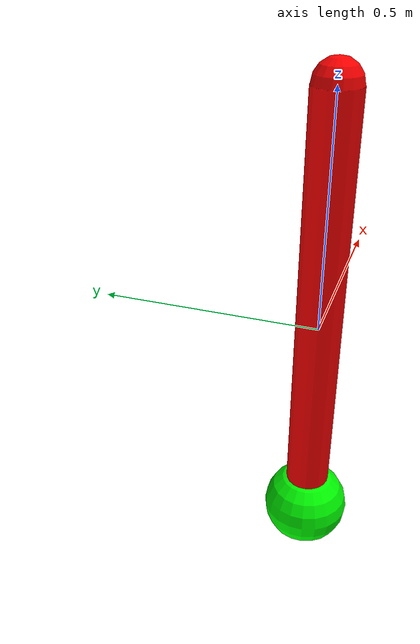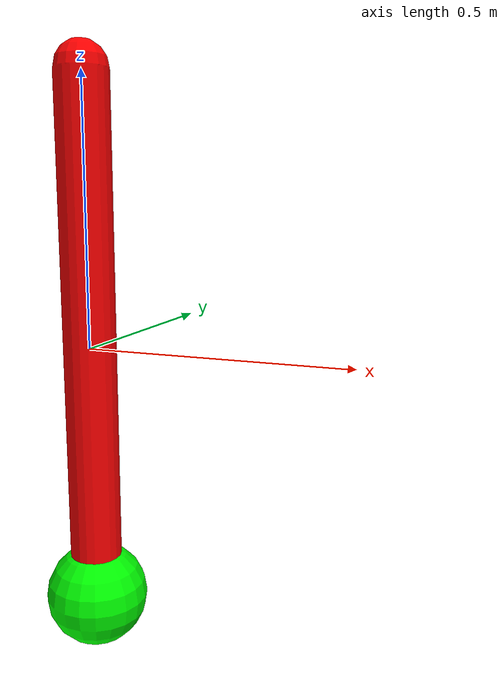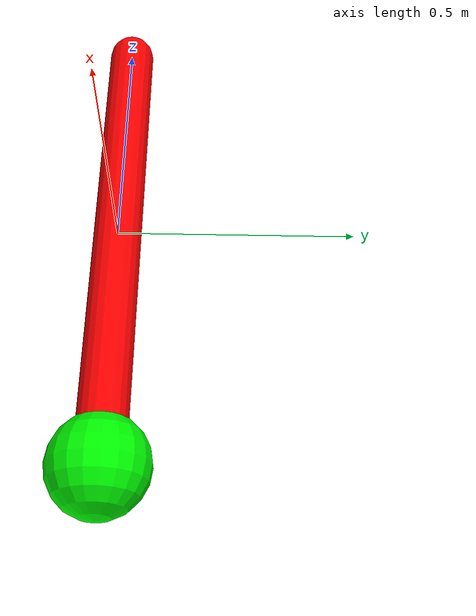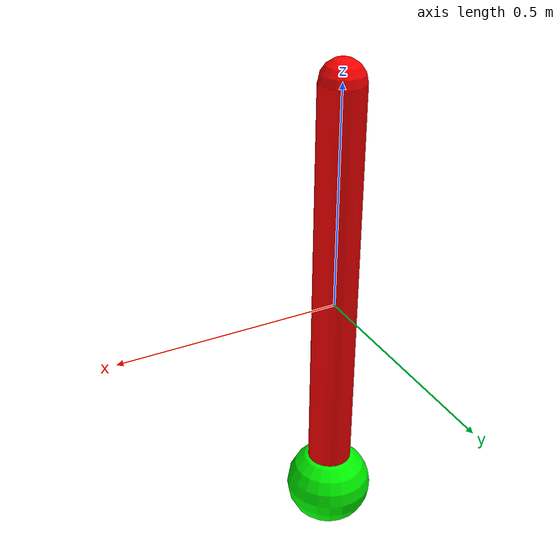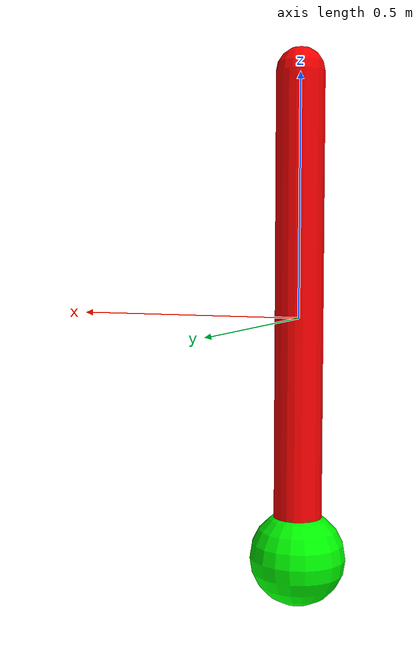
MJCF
<mujoco>
  <worldbody>
    <light name="top" pos="0 0 1"/>

    <body name="pendulum" euler="0 0 -45">
      <joint name="swing" type="hinge" axis="1 -1 0" pos="0 0 0.5"/>
      <geom name="pole" type="capsule" size=".05 .5" rgba="1 0 0 1"/>
      <geom name="ball" pos="0 0 -0.5" size="0.1" rgba="0 1 0 1"/>
    </body>

  </worldbody>
</mujoco>
